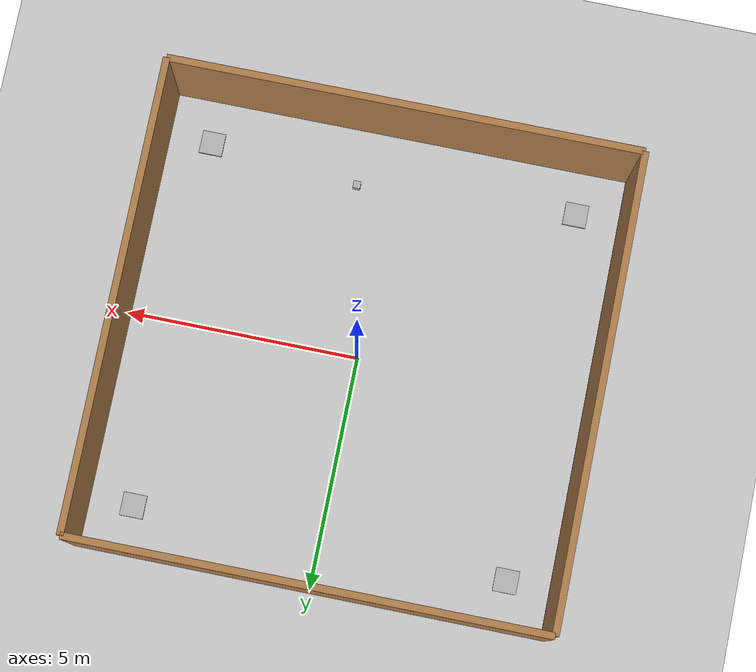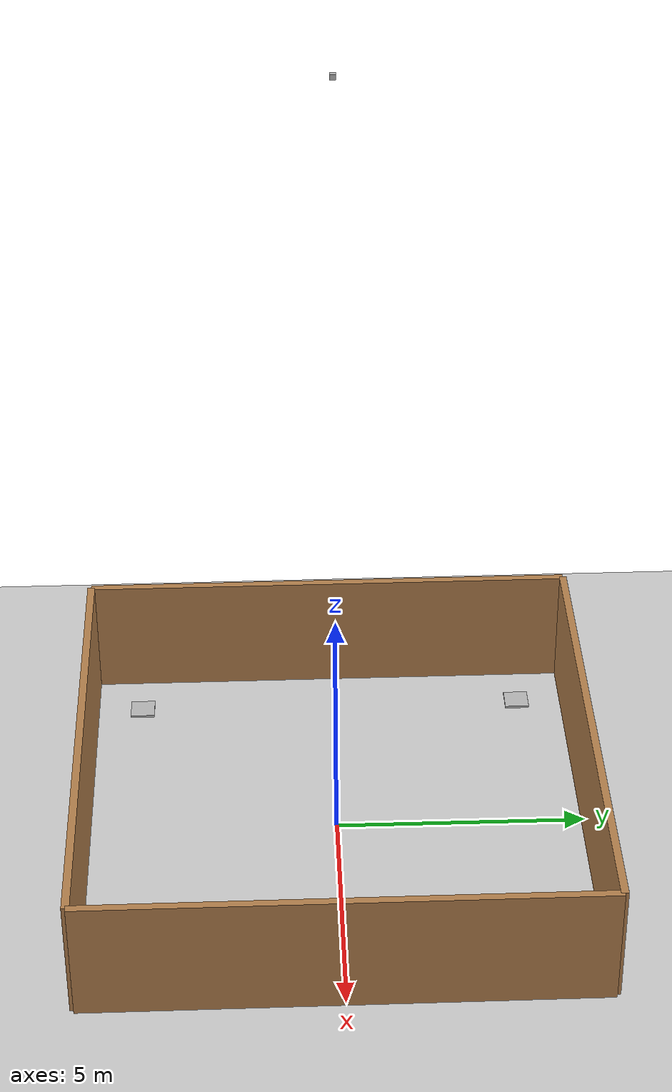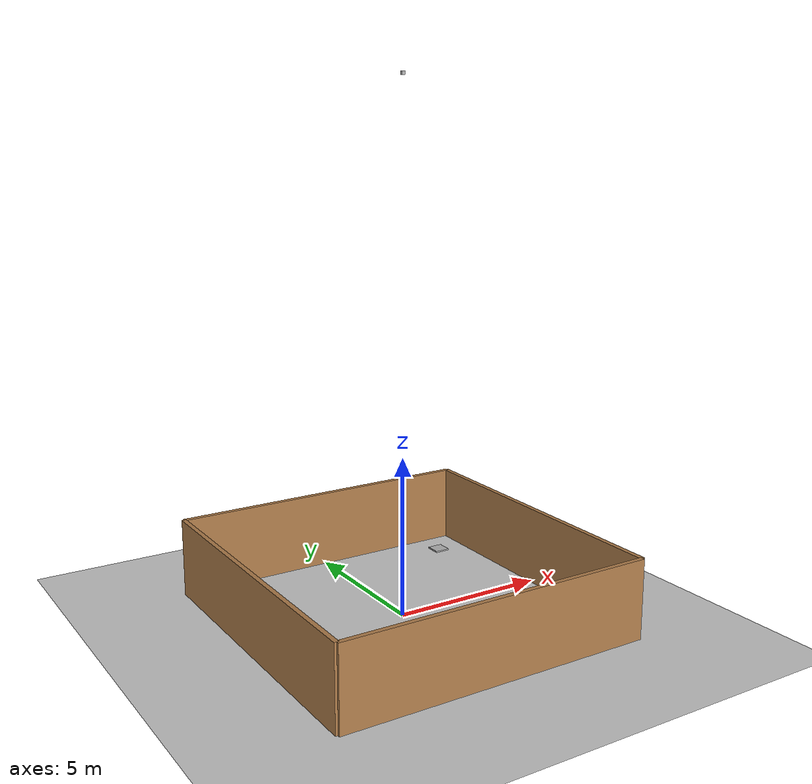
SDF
<?xml version="1.0"?>
<sdf version="1.6">
  <world name="default">
    <!-- A global light source -->
    <include>
      <uri>model://sun</uri>
      <pose> 0 0 50000 0 0 0</pose>
    </include>

    <!-- A ground plane -->
    <include>
      <uri>model://ground_plane</uri>
    </include>

    <physics type="ode">
      <real_time_update_rate>1000.0</real_time_update_rate>
      <max_step_size>0.001</max_step_size>
      <real_time_factor>10</real_time_factor>
      <ode>
        <solver>
          <type>quick</type>
          <iters>150</iters>
          <precon_iters>0</precon_iters>
          <sor>1.400000</sor>
          <use_dynamic_moi_rescaling>1</use_dynamic_moi_rescaling>
        </solver>
        <constraints>
          <cfm>0.00001</cfm>
          <erp>0.2</erp>
          <contact_max_correcting_vel>2000.000000</contact_max_correcting_vel>
          <contact_surface_layer>0.01000</contact_surface_layer>
        </constraints>
      </ode>
    </physics>

    <include>
      <uri>model://create_four_walls</uri>
    </include>

    <include>
      <uri>model://create_camera</uri>
      <pose> 0 0 16 0 1.57 1.57</pose>
      <name>camera</name>
    </include>

    <include>
      <uri>model://create_april_tags</uri>
      <name>AprilTag</name>
    </include>

    <scene>
      <ambient>0.4 0.4 0.4 1</ambient>
      <background>0.7 0.7 0.7 1</background>
      <shadows>true</shadows>
    </scene>

  </world>
</sdf>

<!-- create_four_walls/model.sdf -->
<sdf version='1.6'>
  <model name='create_four_walls'>
    <static>1</static>
    <link name='Wall_101'>
      <pose frame=''>-5 0 0 0 0 -1.5708</pose>
      <self_collide>0</self_collide>
      <kinematic>0</kinematic>
      <visual name='Wall_101_Visual'>
        <pose frame=''>0 0 1.25 0 -0 0</pose>
        <geometry>
          <box>
            <size>10 0.15 2.5</size>
          </box>
        </geometry>
        <material>
          <script>
            <uri>file://media/materials/scripts/gazebo.material</uri>
            <name>Gazebo/Wood</name>
          </script>
          <ambient>1 1 1 1</ambient>
          <diffuse>1 1 1 1</diffuse>
          <specular>0.2 0.2 0.2 1</specular>
          <emissive>0 0 0 1</emissive>
        </material>
        <cast_shadows>0</cast_shadows>
        <transparency>0</transparency>
      </visual>
      <collision name='Wall_101_Collision'>
        <laser_retro>0</laser_retro>
        <max_contacts>10</max_contacts>
        <pose frame=''>0 0 1.25 0 -0 0</pose>
        <geometry>
          <box>
            <size>10 0.15 2.5</size>
          </box>
        </geometry>
        <surface>
          <friction>
            <ode>
              <mu>1</mu>
              <mu2>1</mu2>
              <fdir1>0 0 0</fdir1>
              <slip1>0</slip1>
              <slip2>0</slip2>
            </ode>
            <torsional>
              <coefficient>1</coefficient>
              <patch_radius>0</patch_radius>
              <surface_radius>0</surface_radius>
              <use_patch_radius>1</use_patch_radius>
              <ode>
                <slip>0</slip>
              </ode>
            </torsional>
          </friction>
          <bounce>
            <restitution_coefficient>0</restitution_coefficient>
            <threshold>1e+06</threshold>
          </bounce>
          <contact>
            <collide_without_contact>0</collide_without_contact>
            <collide_without_contact_bitmask>1</collide_without_contact_bitmask>
            <collide_bitmask>1</collide_bitmask>
            <ode>
              <soft_cfm>0</soft_cfm>
              <soft_erp>0.2</soft_erp>
              <kp>1e+13</kp>
              <kd>1</kd>
              <max_vel>0.01</max_vel>
              <min_depth>0</min_depth>
            </ode>
            <bullet>
              <split_impulse>1</split_impulse>
              <split_impulse_penetration_threshold>-0.01</split_impulse_penetration_threshold>
              <soft_cfm>0</soft_cfm>
              <soft_erp>0.2</soft_erp>
              <kp>1e+13</kp>
              <kd>1</kd>
            </bullet>
          </contact>
        </surface>
      </collision>
    </link>

    <link name='Wall_102'>
      <pose frame=''>5 0 0 0 0 -1.5708</pose>
      <self_collide>0</self_collide>
      <kinematic>0</kinematic>
      <visual name='Wall_102_Visual'>
        <pose frame=''>0 0 1.25 0 -0 0</pose>
        <geometry>
          <box>
            <size>10 0.15 2.5</size>
          </box>
        </geometry>
        <material>
          <script>
            <uri>file://media/materials/scripts/gazebo.material</uri>
            <name>Gazebo/Wood</name>
          </script>
          <ambient>1 1 1 1</ambient>
          <diffuse>1 1 1 1</diffuse>
          <specular>0.2 0.2 0.2 1</specular>
          <emissive>0 0 0 1</emissive>
        </material>
        <cast_shadows>0</cast_shadows>
        <transparency>0</transparency>
      </visual>
      <collision name='Wall_102_Collision'>
        <laser_retro>0</laser_retro>
        <max_contacts>10</max_contacts>
        <pose frame=''>0 0 1.25 0 -0 0</pose>
        <geometry>
          <box>
            <size>10 0.15 2.5</size>
          </box>
        </geometry>
        <surface>
          <friction>
            <ode>
              <mu>1</mu>
              <mu2>1</mu2>
              <fdir1>0 0 0</fdir1>
              <slip1>0</slip1>
              <slip2>0</slip2>
            </ode>
            <torsional>
              <coefficient>1</coefficient>
              <patch_radius>0</patch_radius>
              <surface_radius>0</surface_radius>
              <use_patch_radius>1</use_patch_radius>
              <ode>
                <slip>0</slip>
              </ode>
            </torsional>
          </friction>
          <bounce>
            <restitution_coefficient>0</restitution_coefficient>
            <threshold>1e+06</threshold>
          </bounce>
          <contact>
            <collide_without_contact>0</collide_without_contact>
            <collide_without_contact_bitmask>1</collide_without_contact_bitmask>
            <collide_bitmask>1</collide_bitmask>
            <ode>
              <soft_cfm>0</soft_cfm>
              <soft_erp>0.2</soft_erp>
              <kp>1e+13</kp>
              <kd>1</kd>
              <max_vel>0.01</max_vel>
              <min_depth>0</min_depth>
            </ode>
            <bullet>
              <split_impulse>1</split_impulse>
              <split_impulse_penetration_threshold>-0.01</split_impulse_penetration_threshold>
              <soft_cfm>0</soft_cfm>
              <soft_erp>0.2</soft_erp>
              <kp>1e+13</kp>
              <kd>1</kd>
            </bullet>
          </contact>
        </surface>
      </collision>
    </link>

    <link name='Wall_103'>
      <pose frame=''>0 5 0 0 0 0</pose>
      <self_collide>0</self_collide>
      <kinematic>0</kinematic>
      <visual name='Wall_103_Visual'>
        <pose frame=''>0 0 1.25 0 -0 0</pose>
        <geometry>
          <box>
            <size>10 0.15 2.5</size>
          </box>
        </geometry>
        <material>
          <script>
            <uri>file://media/materials/scripts/gazebo.material</uri>
            <name>Gazebo/Wood</name>
          </script>
          <ambient>1 1 1 1</ambient>
          <diffuse>1 1 1 1</diffuse>
          <specular>0.2 0.2 0.2 1</specular>
          <emissive>0 0 0 1</emissive>
        </material>
        <cast_shadows>0</cast_shadows>
        <transparency>0</transparency>
      </visual>
      <collision name='Wall_103_Collision'>
        <laser_retro>0</laser_retro>
        <max_contacts>10</max_contacts>
        <pose frame=''>0 0 1.25 0 -0 0</pose>
        <geometry>
          <box>
            <size>10 0.15 2.5</size>
          </box>
        </geometry>
        <surface>
          <friction>
            <ode>
              <mu>1</mu>
              <mu2>1</mu2>
              <fdir1>0 0 0</fdir1>
              <slip1>0</slip1>
              <slip2>0</slip2>
            </ode>
            <torsional>
              <coefficient>1</coefficient>
              <patch_radius>0</patch_radius>
              <surface_radius>0</surface_radius>
              <use_patch_radius>1</use_patch_radius>
              <ode>
                <slip>0</slip>
              </ode>
            </torsional>
          </friction>
          <bounce>
            <restitution_coefficient>0</restitution_coefficient>
            <threshold>1e+06</threshold>
          </bounce>
          <contact>
            <collide_without_contact>0</collide_without_contact>
            <collide_without_contact_bitmask>1</collide_without_contact_bitmask>
            <collide_bitmask>1</collide_bitmask>
            <ode>
              <soft_cfm>0</soft_cfm>
              <soft_erp>0.2</soft_erp>
              <kp>1e+13</kp>
              <kd>1</kd>
              <max_vel>0.01</max_vel>
              <min_depth>0</min_depth>
            </ode>
            <bullet>
              <split_impulse>1</split_impulse>
              <split_impulse_penetration_threshold>-0.01</split_impulse_penetration_threshold>
              <soft_cfm>0</soft_cfm>
              <soft_erp>0.2</soft_erp>
              <kp>1e+13</kp>
              <kd>1</kd>
            </bullet>
          </contact>
        </surface>
      </collision>
    </link>

    <link name='Wall_104'>
      <pose frame=''>0 -5 0 0 0 0</pose>
      <self_collide>0</self_collide>
      <kinematic>0</kinematic>
      <visual name='Wall_104_Visual'>
        <pose frame=''>0 0 1.25 0 -0 0</pose>
        <geometry>
          <box>
            <size>10 0.15 2.5</size>
          </box>
        </geometry>
        <material>
          <script>
            <uri>file://media/materials/scripts/gazebo.material</uri>
            <name>Gazebo/Wood</name>
          </script>
          <ambient>1 1 1 1</ambient>
          <diffuse>1 1 1 1</diffuse>
          <specular>0.2 0.2 0.2 1</specular>
          <emissive>0 0 0 1</emissive>
        </material>
        <cast_shadows>0</cast_shadows>
        <transparency>0</transparency>
      </visual>
      <collision name='Wall_104_Collision'>
        <laser_retro>0</laser_retro>
        <max_contacts>10</max_contacts>
        <pose frame=''>0 0 1.25 0 -0 0</pose>
        <geometry>
          <box>
            <size>10 0.15 2.5</size>
          </box>
        </geometry>
        <surface>
          <friction>
            <ode>
              <mu>1</mu>
              <mu2>1</mu2>
              <fdir1>0 0 0</fdir1>
              <slip1>0</slip1>
              <slip2>0</slip2>
            </ode>
            <torsional>
              <coefficient>1</coefficient>
              <patch_radius>0</patch_radius>
              <surface_radius>0</surface_radius>
              <use_patch_radius>1</use_patch_radius>
              <ode>
                <slip>0</slip>
              </ode>
            </torsional>
          </friction>
          <bounce>
            <restitution_coefficient>0</restitution_coefficient>
            <threshold>1e+06</threshold>
          </bounce>
          <contact>
            <collide_without_contact>0</collide_without_contact>
            <collide_without_contact_bitmask>1</collide_without_contact_bitmask>
            <collide_bitmask>1</collide_bitmask>
            <ode>
              <soft_cfm>0</soft_cfm>
              <soft_erp>0.2</soft_erp>
              <kp>1e+13</kp>
              <kd>1</kd>
              <max_vel>0.01</max_vel>
              <min_depth>0</min_depth>
            </ode>
            <bullet>
              <split_impulse>1</split_impulse>
              <split_impulse_penetration_threshold>-0.01</split_impulse_penetration_threshold>
              <soft_cfm>0</soft_cfm>
              <soft_erp>0.2</soft_erp>
              <kp>1e+13</kp>
              <kd>1</kd>
            </bullet>
          </contact>
        </surface>
      </collision>
    </link>

  </model>
</sdf>

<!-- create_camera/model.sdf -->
<sdf version='1.6'>
  <model name='camera'>
    <static>true</static>
    <link name='camera_link'>
      <visual name='visual'>
        <geometry>
          <box>
            <size>0.1 0.1 0.1</size>
          </box>
        </geometry>
      </visual>
      <sensor name='apriltag_camera' type='camera'>
        <camera>
          <horizontal_fov>1.047</horizontal_fov>
          <image>
            <width>480</width>
            <height>270</height>
          </image>
          <clip>
            <near>0.1</near>
            <far>50</far>
          </clip>
        </camera>
        <always_on>1</always_on>
        <update_rate>50</update_rate>
        <plugin name="camera_controller" filename="libgazebo_ros_camera.so">
          <alwaysOn>true</alwaysOn>
          <updateRate>30</updateRate>
          <cameraName>/apriltag_camera</cameraName>
          <imageTopicName>camera_output_image</imageTopicName>
          <cameraInfoTopicName>camera_info</cameraInfoTopicName>
          <frameName>camera_link</frameName>
          <hackBaseline>0.07</hackBaseline>
          <distortionK1>0.0</distortionK1>
          <distortionK2>0.0</distortionK2>
          <distortionK3>0.0</distortionK3>
          <distortionT1>0.0</distortionT1>
          <distortionT2>0.0</distortionT2>
        </plugin>
      </sensor>
    </link>
  </model>
</sdf>

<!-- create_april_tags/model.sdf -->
<sdf version='1.6'>
  <model name='create_april_tags'>
    <static>1</static>

    <link name='AprilTag1'>
      <pose>4 4 0 0 0 0</pose>
      <self_collide>0</self_collide>
      <kinematic>0</kinematic>
      <visual name='AprilTag1_Visual'>
        <geometry>
          <box>
            <size>0.5 0.5 0.05 </size>
          </box>
        </geometry>
        <material>
          <script>
            <uri>model://create_april_tags/materials/scripts </uri>
            <uri>model://create_april_tags/materials/textures </uri>
            <name>AprilTag1</name>
          </script>
        </material>
        <cast_shadows>1</cast_shadows>
        <transparency>0</transparency>
      </visual>
    </link>

    <link name='AprilTag2'>
      <pose>4 -4 0 0 0 0</pose>
      <self_collide>0</self_collide>
      <kinematic>0</kinematic>
      <visual name='AprilTag2_Visual'>
        <geometry>
          <box>
            <size>0.5 0.5 0.05 </size>
          </box>
        </geometry>
        <material>
          <script>
            <uri>model://create_april_tags/materials/scripts/create_april_tags.material </uri>
            <name>AprilTag2</name>
          </script>
        </material>
        <cast_shadows>1</cast_shadows>
        <transparency>0</transparency>
      </visual>
    </link>

    <link name='AprilTag3'>
      <pose>-4 4 0 0 0 0</pose>
      <self_collide>0</self_collide>
      <kinematic>0</kinematic>
      <visual name='AprilTag3_Visual'>
        <geometry>
          <box>
            <size>0.5 0.5 0.05 </size>
          </box>
        </geometry>
        <material>
          <script>
            <uri>model://create_april_tags/materials/scripts/create_april_tags.material </uri>
            <name>AprilTag3</name>
          </script>
        </material>
        <cast_shadows>1</cast_shadows>
        <transparency>0</transparency>
      </visual>
    </link>

    <link name='AprilTag4'>
      <pose>-4 -4 0 0 0 0</pose>
      <self_collide>0</self_collide>
      <kinematic>0</kinematic>
      <visual name='AprilTag4_Visual'>
        <geometry>
          <box>
            <size>0.5 0.5 0.05 </size>
          </box>
        </geometry>
        <material>
          <script>
            <uri>model://create_april_tags/materials/scripts/create_april_tags.material </uri>
            <name>AprilTag4</name>
          </script>
        </material>
        <cast_shadows>1</cast_shadows>
        <transparency>0</transparency>
      </visual>
    </link>

  </model>
</sdf>
